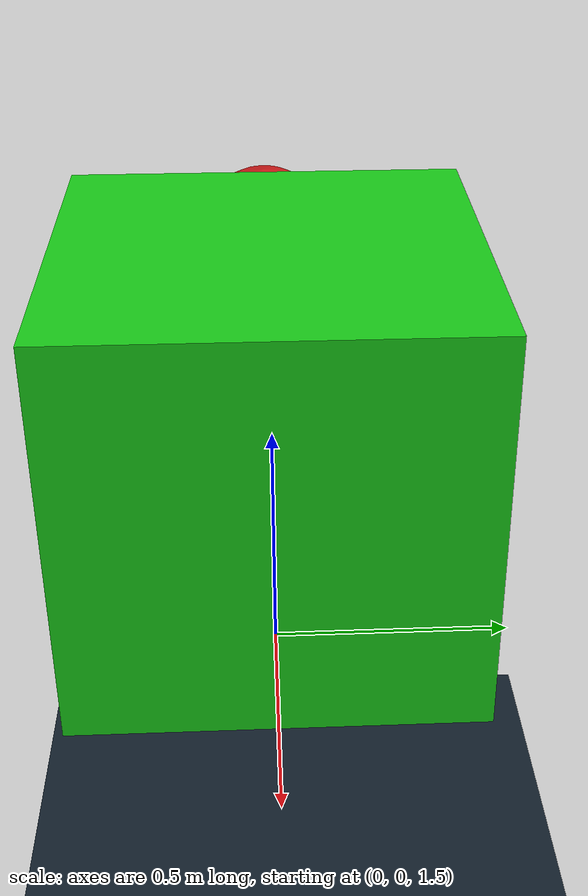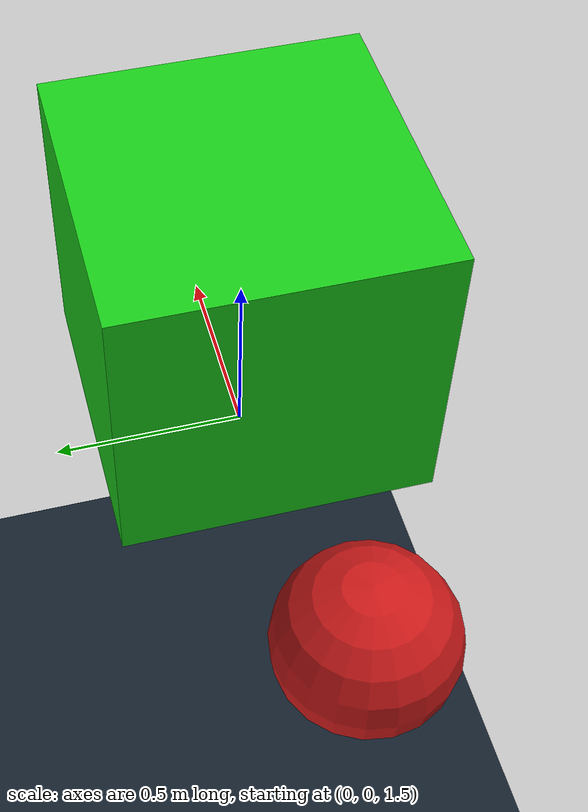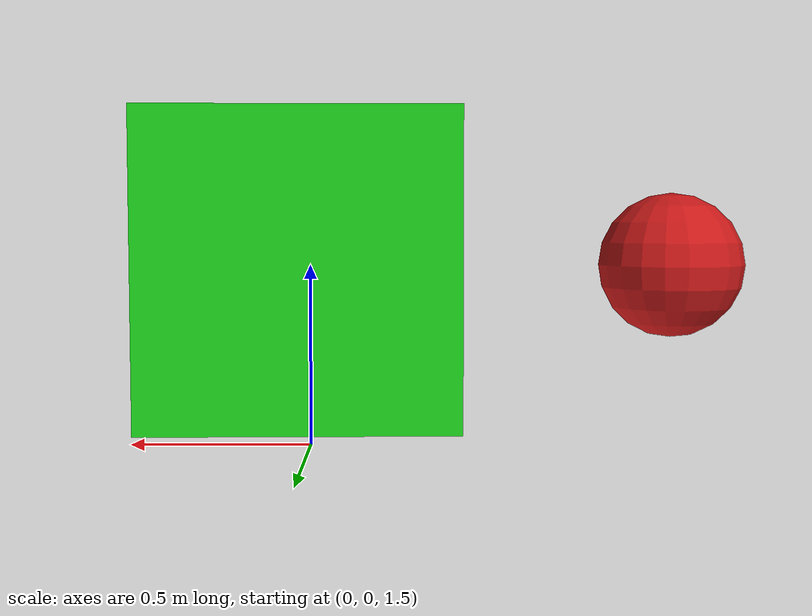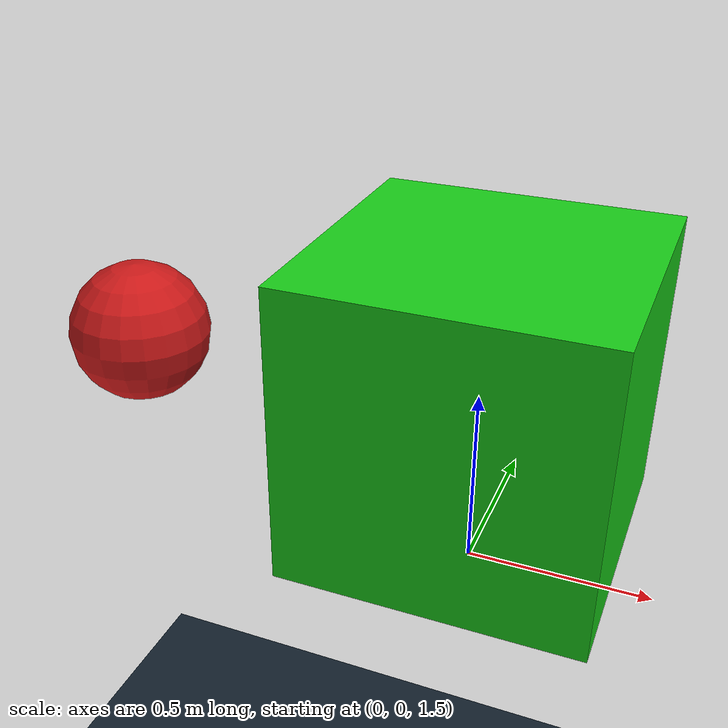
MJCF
<mujoco>
    <option timestep="0.01" gravity="0 0 -9.81" />

    <asset>
        <texture name="texplane" type="2d" builtin="checker" rgb1="0.2 0.3 0.4" rgb2="0.1 0.2 0.3" width="512" height="512" mark="cross" markrgb=".8 .8 .8"/>
        <material name="floor" texture="texplane" rgba="0.5 0.5 0.5 1" />
        <material name="object" rgba="0.1 0.8 0.1 1" />
        <material name="sphere" rgba="0.8 0.1 0.1 1" />
    </asset>

    <worldbody>
        <!-- Floor -->
        <geom name="floor" type="plane" size="10 10 0.1" material="floor" />

        <!-- squishy box -->
        <body name="object" pos="0 0 2">
            <freejoint name="object_joint" />
            <geom name="object_geom" type="box" size="0.4 0.4 0.4" material="object" mass="1.0"
            solref="0.1 1" solimp="0.9 0.95 0.001"/>
        </body>

        <!-- Sphere -->SD
        <body name="sphere" pos="-1 0 2">
            <freejoint name="sphere_joint" />
            <geom name="sphere_geom" type="sphere" size="0.2" material="sphere" mass="1.0" />
        </body>

        <!-- Camera -->
        <camera name="side_cam" pos="3 0 1.5" xyaxes="-1 0 0 0 0 1" />
    </worldbody>
</mujoco>
